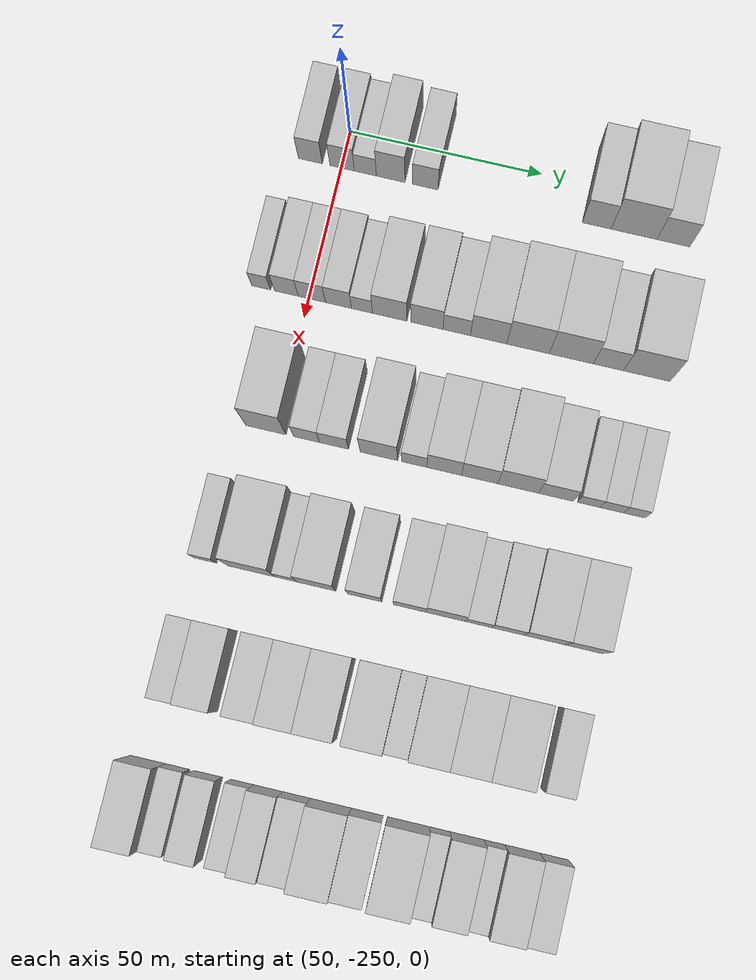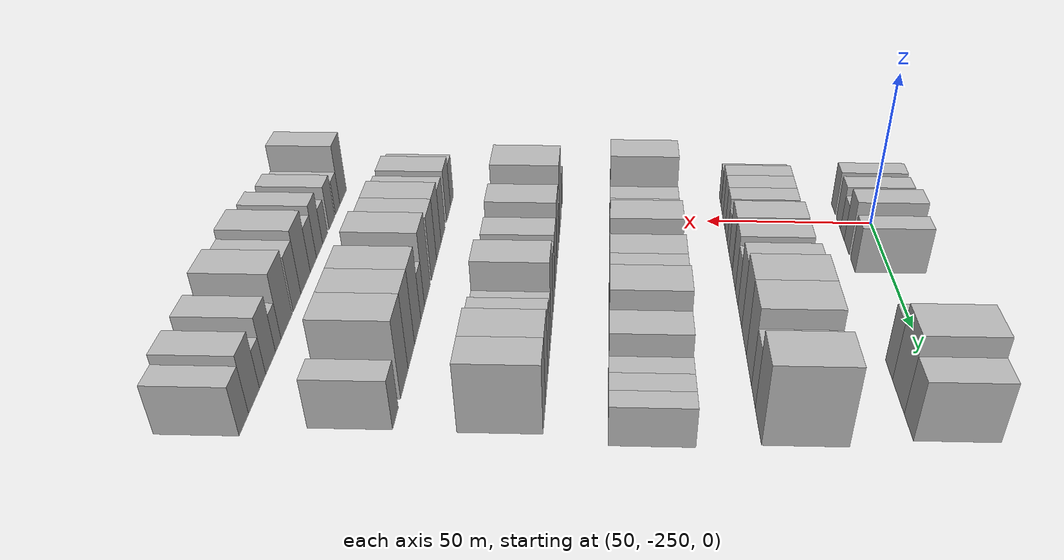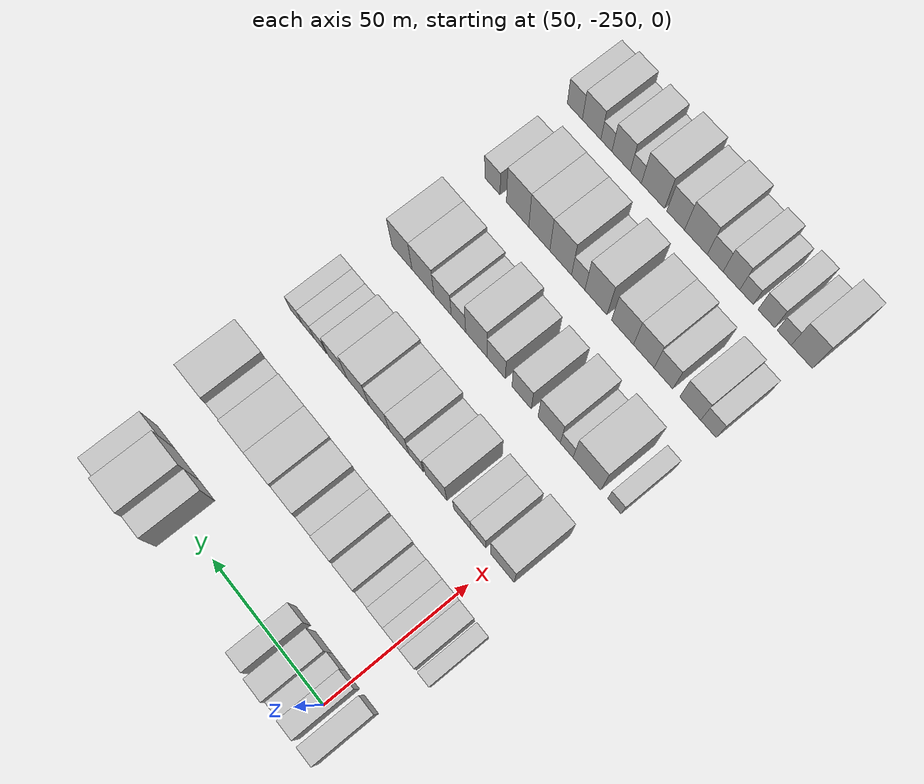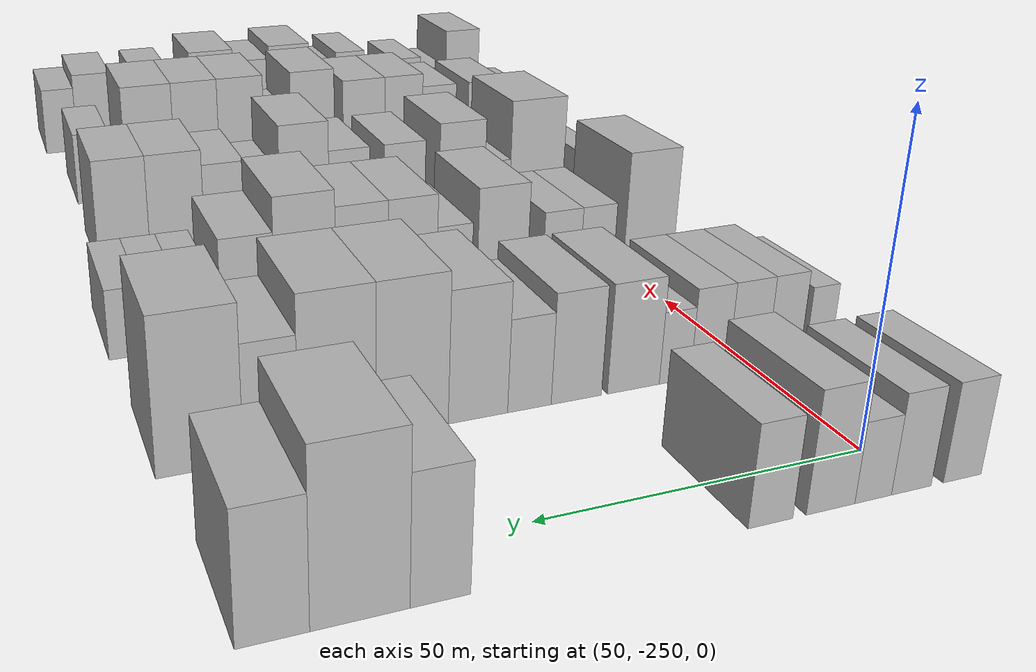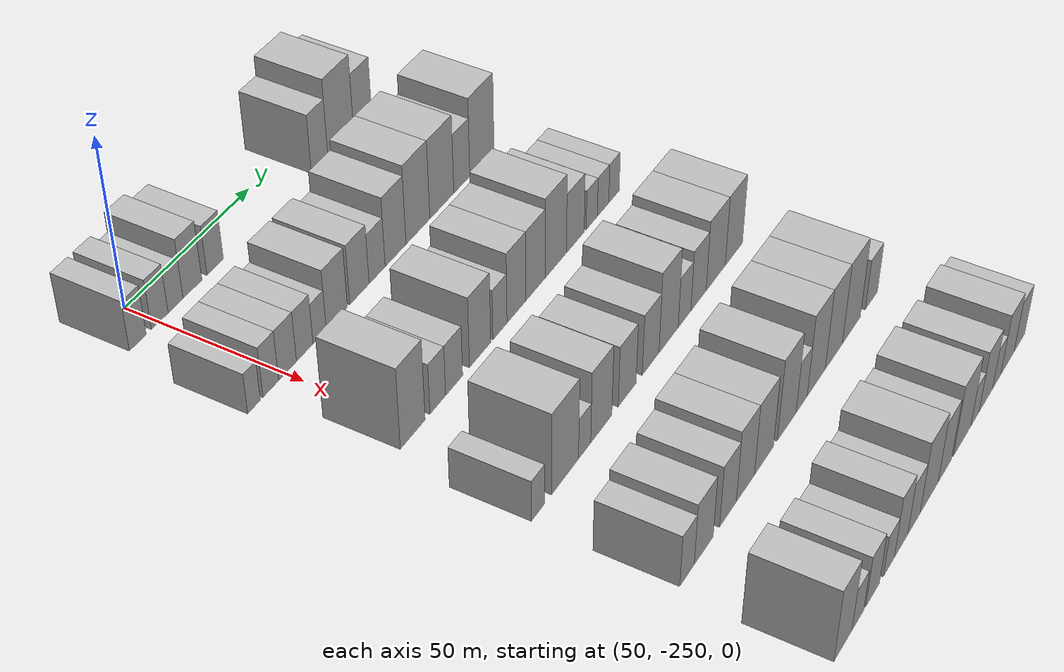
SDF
<sdf version="1.6">
 <world name="default">
  <model name="building_37">
   <static>1</static>
   <pose>50.0000 -258.0937 0 0.000000 0.000000 0.000000</pose>
   <link name="link">
    <pose>0 0 7.50 0 0 0</pose>
    <collision name="collision"><geometry><box><size>20.0000 6.2632 15.0000</size></box></geometry></collision>
    <visual name="visual">
     <cast_shadows>0</cast_shadows>
     <geometry><box><size>20.0000 6.2632 15.0000</size></box></geometry>
     <material>
      <script>
       <uri>model://HANNAS_wall/materials/scripts</uri>
       <uri>model://HANNAS_wall/materials/textures</uri>
       <name>vrc/HANNAS_wall</name>
      </script>
     </material>
    </visual>
   </link>
  </model>
  <model name="building_38">
   <static>1</static>
   <pose>50.0000 -249.7709 0 0.000000 0.000000 0.000000</pose>
   <link name="link">
    <pose>0 0 7.50 0 0 0</pose>
    <collision name="collision"><geometry><box><size>20.0000 6.3823 15.0000</size></box></geometry></collision>
    <visual name="visual">
     <cast_shadows>0</cast_shadows>
     <geometry><box><size>20.0000 6.3823 15.0000</size></box></geometry>
     <material>
      <script>
       <uri>model://HANNAS_wall/materials/scripts</uri>
       <uri>model://HANNAS_wall/materials/textures</uri>
       <name>vrc/HANNAS_wall</name>
      </script>
     </material>
    </visual>
   </link>
  </model>
  <model name="building_39">
   <static>1</static>
   <pose>50.0000 -243.7044 0 0.000000 0.000000 0.000000</pose>
   <link name="link">
    <pose>0 0 6.00 0 0 0</pose>
    <collision name="collision"><geometry><box><size>20.0000 5.7508 12.0000</size></box></geometry></collision>
    <visual name="visual">
     <cast_shadows>0</cast_shadows>
     <geometry><box><size>20.0000 5.7508 12.0000</size></box></geometry>
     <material>
      <script>
       <uri>model://HANNAS_wall/materials/scripts</uri>
       <uri>model://HANNAS_wall/materials/textures</uri>
       <name>vrc/HANNAS_wall</name>
      </script>
     </material>
    </visual>
   </link>
  </model>
  <model name="building_40">
   <static>1</static>
   <pose>50.0000 -237.0932 0 0.000000 0.000000 0.000000</pose>
   <link name="link">
    <pose>0 0 9.00 0 0 0</pose>
    <collision name="collision"><geometry><box><size>20.0000 7.4716 18.0000</size></box></geometry></collision>
    <visual name="visual">
     <cast_shadows>0</cast_shadows>
     <geometry><box><size>20.0000 7.4716 18.0000</size></box></geometry>
     <material>
      <script>
       <uri>model://HANNAS_wall/materials/scripts</uri>
       <uri>model://HANNAS_wall/materials/textures</uri>
       <name>vrc/HANNAS_wall</name>
      </script>
     </material>
    </visual>
   </link>
  </model>
  <model name="building_41">
   <static>1</static>
   <pose>50.0000 -228.0385 0 0.000000 0.000000 0.000000</pose>
   <link name="link">
    <pose>0 0 7.50 0 0 0</pose>
    <collision name="collision"><geometry><box><size>20.0000 6.6378 15.0000</size></box></geometry></collision>
    <visual name="visual">
     <cast_shadows>0</cast_shadows>
     <geometry><box><size>20.0000 6.6378 15.0000</size></box></geometry>
     <material>
      <script>
       <uri>model://HANNAS_wall/materials/scripts</uri>
       <uri>model://HANNAS_wall/materials/textures</uri>
       <name>vrc/HANNAS_wall</name>
      </script>
     </material>
    </visual>
   </link>
  </model>
  <model name="building_42">
   <static>1</static>
   <pose>50.0000 -183.5103 0 0.000000 0.000000 0.000000</pose>
   <link name="link">
    <pose>0 0 9.00 0 0 0</pose>
    <collision name="collision"><geometry><box><size>20.0000 7.4729 18.0000</size></box></geometry></collision>
    <visual name="visual">
     <cast_shadows>0</cast_shadows>
     <geometry><box><size>20.0000 7.4729 18.0000</size></box></geometry>
     <material>
      <script>
       <uri>model://HANNAS_wall/materials/scripts</uri>
       <uri>model://HANNAS_wall/materials/textures</uri>
       <name>vrc/HANNAS_wall</name>
      </script>
     </material>
    </visual>
   </link>
  </model>
  <model name="building_43">
   <static>1</static>
   <pose>50.0000 -173.8588 0 0.000000 0.000000 0.000000</pose>
   <link name="link">
    <pose>0 0 12.00 0 0 0</pose>
    <collision name="collision"><geometry><box><size>20.0000 11.8300 24.0000</size></box></geometry></collision>
    <visual name="visual">
     <cast_shadows>0</cast_shadows>
     <geometry><box><size>20.0000 11.8300 24.0000</size></box></geometry>
     <material>
      <script>
       <uri>model://HANNAS_wall/materials/scripts</uri>
       <uri>model://HANNAS_wall/materials/textures</uri>
       <name>vrc/HANNAS_wall</name>
      </script>
     </material>
    </visual>
   </link>
  </model>
  <model name="building_44">
   <static>1</static>
   <pose>50.0000 -163.6865 0 0.000000 0.000000 0.000000</pose>
   <link name="link">
    <pose>0 0 9.00 0 0 0</pose>
    <collision name="collision"><geometry><box><size>20.0000 8.5146 18.0000</size></box></geometry></collision>
    <visual name="visual">
     <cast_shadows>0</cast_shadows>
     <geometry><box><size>20.0000 8.5146 18.0000</size></box></geometry>
     <material>
      <script>
       <uri>model://HANNAS_wall/materials/scripts</uri>
       <uri>model://HANNAS_wall/materials/textures</uri>
       <name>vrc/HANNAS_wall</name>
      </script>
     </material>
    </visual>
   </link>
  </model>
  <model name="building_155">
   <static>1</static>
   <pose>85.0000 -262.2812 0 0.000000 0.000000 0.000000</pose>
   <link name="link">
    <pose>0 0 6.00 0 0 0</pose>
    <collision name="collision"><geometry><box><size>20.0000 4.8796 12.0000</size></box></geometry></collision>
    <visual name="visual">
     <cast_shadows>0</cast_shadows>
     <geometry><box><size>20.0000 4.8796 12.0000</size></box></geometry>
     <material>
      <script>
       <uri>model://HANNAS_wall/materials/scripts</uri>
       <uri>model://HANNAS_wall/materials/textures</uri>
       <name>vrc/HANNAS_wall</name>
      </script>
     </material>
    </visual>
   </link>
  </model>
  <model name="building_156">
   <static>1</static>
   <pose>85.0000 -255.7673 0 0.000000 0.000000 0.000000</pose>
   <link name="link">
    <pose>0 0 7.50 0 0 0</pose>
    <collision name="collision"><geometry><box><size>20.0000 6.1482 15.0000</size></box></geometry></collision>
    <visual name="visual">
     <cast_shadows>0</cast_shadows>
     <geometry><box><size>20.0000 6.1482 15.0000</size></box></geometry>
     <material>
      <script>
       <uri>model://HANNAS_wall/materials/scripts</uri>
       <uri>model://HANNAS_wall/materials/textures</uri>
       <name>vrc/HANNAS_wall</name>
      </script>
     </material>
    </visual>
   </link>
  </model>
  <model name="building_157">
   <static>1</static>
   <pose>85.0000 -249.1552 0 0.000000 0.000000 0.000000</pose>
   <link name="link">
    <pose>0 0 7.50 0 0 0</pose>
    <collision name="collision"><geometry><box><size>20.0000 7.0761 15.0000</size></box></geometry></collision>
    <visual name="visual">
     <cast_shadows>0</cast_shadows>
     <geometry><box><size>20.0000 7.0761 15.0000</size></box></geometry>
     <material>
      <script>
       <uri>model://HANNAS_wall/materials/scripts</uri>
       <uri>model://HANNAS_wall/materials/textures</uri>
       <name>vrc/HANNAS_wall</name>
      </script>
     </material>
    </visual>
   </link>
  </model>
  <model name="building_158">
   <static>1</static>
   <pose>85.0000 -242.2648 0 0.000000 0.000000 0.000000</pose>
   <link name="link">
    <pose>0 0 7.50 0 0 0</pose>
    <collision name="collision"><geometry><box><size>20.0000 6.7046 15.0000</size></box></geometry></collision>
    <visual name="visual">
     <cast_shadows>0</cast_shadows>
     <geometry><box><size>20.0000 6.7046 15.0000</size></box></geometry>
     <material>
      <script>
       <uri>model://HANNAS_wall/materials/scripts</uri>
       <uri>model://HANNAS_wall/materials/textures</uri>
       <name>vrc/HANNAS_wall</name>
      </script>
     </material>
    </visual>
   </link>
  </model>
  <model name="building_159">
   <static>1</static>
   <pose>85.0000 -236.1976 0 0.000000 0.000000 0.000000</pose>
   <link name="link">
    <pose>0 0 6.00 0 0 0</pose>
    <collision name="collision"><geometry><box><size>20.0000 5.4297 12.0000</size></box></geometry></collision>
    <visual name="visual">
     <cast_shadows>0</cast_shadows>
     <geometry><box><size>20.0000 5.4297 12.0000</size></box></geometry>
     <material>
      <script>
       <uri>model://HANNAS_wall/materials/scripts</uri>
       <uri>model://HANNAS_wall/materials/textures</uri>
       <name>vrc/HANNAS_wall</name>
      </script>
     </material>
    </visual>
   </link>
  </model>
  <model name="building_160">
   <static>1</static>
   <pose>85.0000 -229.0585 0 0.000000 0.000000 0.000000</pose>
   <link name="link">
    <pose>0 0 9.00 0 0 0</pose>
    <collision name="collision"><geometry><box><size>20.0000 8.8485 18.0000</size></box></geometry></collision>
    <visual name="visual">
     <cast_shadows>0</cast_shadows>
     <geometry><box><size>20.0000 8.8485 18.0000</size></box></geometry>
     <material>
      <script>
       <uri>model://HANNAS_wall/materials/scripts</uri>
       <uri>model://HANNAS_wall/materials/textures</uri>
       <name>vrc/HANNAS_wall</name>
      </script>
     </material>
    </visual>
   </link>
  </model>
  <model name="building_161">
   <static>1</static>
   <pose>85.0000 -219.4779 0 0.000000 0.000000 0.000000</pose>
   <link name="link">
    <pose>0 0 9.00 0 0 0</pose>
    <collision name="collision"><geometry><box><size>20.0000 8.3127 18.0000</size></box></geometry></collision>
    <visual name="visual">
     <cast_shadows>0</cast_shadows>
     <geometry><box><size>20.0000 8.3127 18.0000</size></box></geometry>
     <material>
      <script>
       <uri>model://HANNAS_wall/materials/scripts</uri>
       <uri>model://HANNAS_wall/materials/textures</uri>
       <name>vrc/HANNAS_wall</name>
      </script>
     </material>
    </visual>
   </link>
  </model>
  <model name="building_162">
   <static>1</static>
   <pose>85.0000 -211.8060 0 0.000000 0.000000 0.000000</pose>
   <link name="link">
    <pose>0 0 7.50 0 0 0</pose>
    <collision name="collision"><geometry><box><size>20.0000 7.0311 15.0000</size></box></geometry></collision>
    <visual name="visual">
     <cast_shadows>0</cast_shadows>
     <geometry><box><size>20.0000 7.0311 15.0000</size></box></geometry>
     <material>
      <script>
       <uri>model://HANNAS_wall/materials/scripts</uri>
       <uri>model://HANNAS_wall/materials/textures</uri>
       <name>vrc/HANNAS_wall</name>
      </script>
     </material>
    </visual>
   </link>
  </model>
  <model name="building_163">
   <static>1</static>
   <pose>85.0000 -203.6371 0 0.000000 0.000000 0.000000</pose>
   <link name="link">
    <pose>0 0 10.50 0 0 0</pose>
    <collision name="collision"><geometry><box><size>20.0000 9.3066 21.0000</size></box></geometry></collision>
    <visual name="visual">
     <cast_shadows>0</cast_shadows>
     <geometry><box><size>20.0000 9.3066 21.0000</size></box></geometry>
     <material>
      <script>
       <uri>model://HANNAS_wall/materials/scripts</uri>
       <uri>model://HANNAS_wall/materials/textures</uri>
       <name>vrc/HANNAS_wall</name>
      </script>
     </material>
    </visual>
   </link>
  </model>
  <model name="building_164">
   <static>1</static>
   <pose>85.0000 -193.5182 0 0.000000 0.000000 0.000000</pose>
   <link name="link">
    <pose>0 0 12.00 0 0 0</pose>
    <collision name="collision"><geometry><box><size>20.0000 10.9312 24.0000</size></box></geometry></collision>
    <visual name="visual">
     <cast_shadows>0</cast_shadows>
     <geometry><box><size>20.0000 10.9312 24.0000</size></box></geometry>
     <material>
      <script>
       <uri>model://HANNAS_wall/materials/scripts</uri>
       <uri>model://HANNAS_wall/materials/textures</uri>
       <name>vrc/HANNAS_wall</name>
      </script>
     </material>
    </visual>
   </link>
  </model>
  <model name="building_165">
   <static>1</static>
   <pose>85.0000 -182.4015 0 0.000000 0.000000 0.000000</pose>
   <link name="link">
    <pose>0 0 12.00 0 0 0</pose>
    <collision name="collision"><geometry><box><size>20.0000 11.3022 24.0000</size></box></geometry></collision>
    <visual name="visual">
     <cast_shadows>0</cast_shadows>
     <geometry><box><size>20.0000 11.3022 24.0000</size></box></geometry>
     <material>
      <script>
       <uri>model://HANNAS_wall/materials/scripts</uri>
       <uri>model://HANNAS_wall/materials/textures</uri>
       <name>vrc/HANNAS_wall</name>
      </script>
     </material>
    </visual>
   </link>
  </model>
  <model name="building_166">
   <static>1</static>
   <pose>85.0000 -172.8926 0 0.000000 0.000000 0.000000</pose>
   <link name="link">
    <pose>0 0 9.00 0 0 0</pose>
    <collision name="collision"><geometry><box><size>20.0000 7.7158 18.0000</size></box></geometry></collision>
    <visual name="visual">
     <cast_shadows>0</cast_shadows>
     <geometry><box><size>20.0000 7.7158 18.0000</size></box></geometry>
     <material>
      <script>
       <uri>model://HANNAS_wall/materials/scripts</uri>
       <uri>model://HANNAS_wall/materials/textures</uri>
       <name>vrc/HANNAS_wall</name>
      </script>
     </material>
    </visual>
   </link>
  </model>
  <model name="building_167">
   <static>1</static>
   <pose>85.0000 -163.0567 0 0.000000 0.000000 0.000000</pose>
   <link name="link">
    <pose>0 0 12.00 0 0 0</pose>
    <collision name="collision"><geometry><box><size>20.0000 11.9559 24.0000</size></box></geometry></collision>
    <visual name="visual">
     <cast_shadows>0</cast_shadows>
     <geometry><box><size>20.0000 11.9559 24.0000</size></box></geometry>
     <material>
      <script>
       <uri>model://HANNAS_wall/materials/scripts</uri>
       <uri>model://HANNAS_wall/materials/textures</uri>
       <name>vrc/HANNAS_wall</name>
      </script>
     </material>
    </visual>
   </link>
  </model>
  <model name="building_290">
   <static>1</static>
   <pose>120.0000 -252.3766 0 0.000000 0.000000 0.000000</pose>
   <link name="link">
    <pose>0 0 12.00 0 0 0</pose>
    <collision name="collision"><geometry><box><size>20.0000 10.2558 24.0000</size></box></geometry></collision>
    <visual name="visual">
     <cast_shadows>0</cast_shadows>
     <geometry><box><size>20.0000 10.2558 24.0000</size></box></geometry>
     <material>
      <script>
       <uri>model://HANNAS_wall/materials/scripts</uri>
       <uri>model://HANNAS_wall/materials/textures</uri>
       <name>vrc/HANNAS_wall</name>
      </script>
     </material>
    </visual>
   </link>
  </model>
  <model name="building_291">
   <static>1</static>
   <pose>120.0000 -241.9222 0 0.000000 0.000000 0.000000</pose>
   <link name="link">
    <pose>0 0 7.50 0 0 0</pose>
    <collision name="collision"><geometry><box><size>20.0000 6.6531 15.0000</size></box></geometry></collision>
    <visual name="visual">
     <cast_shadows>0</cast_shadows>
     <geometry><box><size>20.0000 6.6531 15.0000</size></box></geometry>
     <material>
      <script>
       <uri>model://HANNAS_wall/materials/scripts</uri>
       <uri>model://HANNAS_wall/materials/textures</uri>
       <name>vrc/HANNAS_wall</name>
      </script>
     </material>
    </visual>
   </link>
  </model>
  <model name="building_292">
   <static>1</static>
   <pose>120.0000 -234.9176 0 0.000000 0.000000 0.000000</pose>
   <link name="link">
    <pose>0 0 7.50 0 0 0</pose>
    <collision name="collision"><geometry><box><size>20.0000 7.3561 15.0000</size></box></geometry></collision>
    <visual name="visual">
     <cast_shadows>0</cast_shadows>
     <geometry><box><size>20.0000 7.3561 15.0000</size></box></geometry>
     <material>
      <script>
       <uri>model://HANNAS_wall/materials/scripts</uri>
       <uri>model://HANNAS_wall/materials/textures</uri>
       <name>vrc/HANNAS_wall</name>
      </script>
     </material>
    </visual>
   </link>
  </model>
  <model name="building_293">
   <static>1</static>
   <pose>120.0000 -223.4938 0 0.000000 0.000000 0.000000</pose>
   <link name="link">
    <pose>0 0 10.50 0 0 0</pose>
    <collision name="collision"><geometry><box><size>20.0000 9.4916 21.0000</size></box></geometry></collision>
    <visual name="visual">
     <cast_shadows>0</cast_shadows>
     <geometry><box><size>20.0000 9.4916 21.0000</size></box></geometry>
     <material>
      <script>
       <uri>model://HANNAS_wall/materials/scripts</uri>
       <uri>model://HANNAS_wall/materials/textures</uri>
       <name>vrc/HANNAS_wall</name>
      </script>
     </material>
    </visual>
   </link>
  </model>
  <model name="building_294">
   <static>1</static>
   <pose>120.0000 -214.5290 0 0.000000 0.000000 0.000000</pose>
   <link name="link">
    <pose>0 0 7.50 0 0 0</pose>
    <collision name="collision"><geometry><box><size>20.0000 6.4379 15.0000</size></box></geometry></collision>
    <visual name="visual">
     <cast_shadows>0</cast_shadows>
     <geometry><box><size>20.0000 6.4379 15.0000</size></box></geometry>
     <material>
      <script>
       <uri>model://HANNAS_wall/materials/scripts</uri>
       <uri>model://HANNAS_wall/materials/textures</uri>
       <name>vrc/HANNAS_wall</name>
      </script>
     </material>
    </visual>
   </link>
  </model>
  <model name="building_295">
   <static>1</static>
   <pose>120.0000 -206.9218 0 0.000000 0.000000 0.000000</pose>
   <link name="link">
    <pose>0 0 10.50 0 0 0</pose>
    <collision name="collision"><geometry><box><size>20.0000 8.7766 21.0000</size></box></geometry></collision>
    <visual name="visual">
     <cast_shadows>0</cast_shadows>
     <geometry><box><size>20.0000 8.7766 21.0000</size></box></geometry>
     <material>
      <script>
       <uri>model://HANNAS_wall/materials/scripts</uri>
       <uri>model://HANNAS_wall/materials/textures</uri>
       <name>vrc/HANNAS_wall</name>
      </script>
     </material>
    </visual>
   </link>
  </model>
  <model name="building_296">
   <static>1</static>
   <pose>120.0000 -197.9404 0 0.000000 0.000000 0.000000</pose>
   <link name="link">
    <pose>0 0 10.50 0 0 0</pose>
    <collision name="collision"><geometry><box><size>20.0000 9.1861 21.0000</size></box></geometry></collision>
    <visual name="visual">
     <cast_shadows>0</cast_shadows>
     <geometry><box><size>20.0000 9.1861 21.0000</size></box></geometry>
     <material>
      <script>
       <uri>model://HANNAS_wall/materials/scripts</uri>
       <uri>model://HANNAS_wall/materials/textures</uri>
       <name>vrc/HANNAS_wall</name>
      </script>
     </material>
    </visual>
   </link>
  </model>
  <model name="building_297">
   <static>1</static>
   <pose>120.0000 -188.1647 0 0.000000 0.000000 0.000000</pose>
   <link name="link">
    <pose>0 0 12.00 0 0 0</pose>
    <collision name="collision"><geometry><box><size>20.0000 10.3653 24.0000</size></box></geometry></collision>
    <visual name="visual">
     <cast_shadows>0</cast_shadows>
     <geometry><box><size>20.0000 10.3653 24.0000</size></box></geometry>
     <material>
      <script>
       <uri>model://HANNAS_wall/materials/scripts</uri>
       <uri>model://HANNAS_wall/materials/textures</uri>
       <name>vrc/HANNAS_wall</name>
      </script>
     </material>
    </visual>
   </link>
  </model>
  <model name="building_298">
   <static>1</static>
   <pose>120.0000 -178.5149 0 0.000000 0.000000 0.000000</pose>
   <link name="link">
    <pose>0 0 9.00 0 0 0</pose>
    <collision name="collision"><geometry><box><size>20.0000 8.9342 18.0000</size></box></geometry></collision>
    <visual name="visual">
     <cast_shadows>0</cast_shadows>
     <geometry><box><size>20.0000 8.9342 18.0000</size></box></geometry>
     <material>
      <script>
       <uri>model://HANNAS_wall/materials/scripts</uri>
       <uri>model://HANNAS_wall/materials/textures</uri>
       <name>vrc/HANNAS_wall</name>
      </script>
     </material>
    </visual>
   </link>
  </model>
  <model name="building_299">
   <static>1</static>
   <pose>120.0000 -170.1992 0 0.000000 0.000000 0.000000</pose>
   <link name="link">
    <pose>0 0 6.00 0 0 0</pose>
    <collision name="collision"><geometry><box><size>20.0000 5.6974 12.0000</size></box></geometry></collision>
    <visual name="visual">
     <cast_shadows>0</cast_shadows>
     <geometry><box><size>20.0000 5.6974 12.0000</size></box></geometry>
     <material>
      <script>
       <uri>model://HANNAS_wall/materials/scripts</uri>
       <uri>model://HANNAS_wall/materials/textures</uri>
       <name>vrc/HANNAS_wall</name>
      </script>
     </material>
    </visual>
   </link>
  </model>
  <model name="building_300">
   <static>1</static>
   <pose>120.0000 -164.3979 0 0.000000 0.000000 0.000000</pose>
   <link name="link">
    <pose>0 0 6.00 0 0 0</pose>
    <collision name="collision"><geometry><box><size>20.0000 5.9051 12.0000</size></box></geometry></collision>
    <visual name="visual">
     <cast_shadows>0</cast_shadows>
     <geometry><box><size>20.0000 5.9051 12.0000</size></box></geometry>
     <material>
      <script>
       <uri>model://HANNAS_wall/materials/scripts</uri>
       <uri>model://HANNAS_wall/materials/textures</uri>
       <name>vrc/HANNAS_wall</name>
      </script>
     </material>
    </visual>
   </link>
  </model>
  <model name="building_301">
   <static>1</static>
   <pose>120.0000 -158.7068 0 0.000000 0.000000 0.000000</pose>
   <link name="link">
    <pose>0 0 6.00 0 0 0</pose>
    <collision name="collision"><geometry><box><size>20.0000 5.4771 12.0000</size></box></geometry></collision>
    <visual name="visual">
     <cast_shadows>0</cast_shadows>
     <geometry><box><size>20.0000 5.4771 12.0000</size></box></geometry>
     <material>
      <script>
       <uri>model://HANNAS_wall/materials/scripts</uri>
       <uri>model://HANNAS_wall/materials/textures</uri>
       <name>vrc/HANNAS_wall</name>
      </script>
     </material>
    </visual>
   </link>
  </model>
  <model name="building_420">
   <static>1</static>
   <pose>155.0000 -259.0500 0 0.000000 0.000000 0.000000</pose>
   <link name="link">
    <pose>0 0 6.00 0 0 0</pose>
    <collision name="collision"><geometry><box><size>20.0000 5.6367 12.0000</size></box></geometry></collision>
    <visual name="visual">
     <cast_shadows>0</cast_shadows>
     <geometry><box><size>20.0000 5.6367 12.0000</size></box></geometry>
     <material>
      <script>
       <uri>model://HANNAS_wall/materials/scripts</uri>
       <uri>model://HANNAS_wall/materials/textures</uri>
       <name>vrc/HANNAS_wall</name>
      </script>
     </material>
    </visual>
   </link>
  </model>
  <model name="building_421">
   <static>1</static>
   <pose>155.0000 -247.2632 0 0.000000 0.000000 0.000000</pose>
   <link name="link">
    <pose>0 0 12.00 0 0 0</pose>
    <collision name="collision"><geometry><box><size>20.0000 11.9369 24.0000</size></box></geometry></collision>
    <visual name="visual">
     <cast_shadows>0</cast_shadows>
     <geometry><box><size>20.0000 11.9369 24.0000</size></box></geometry>
     <material>
      <script>
       <uri>model://HANNAS_wall/materials/scripts</uri>
       <uri>model://HANNAS_wall/materials/textures</uri>
       <name>vrc/HANNAS_wall</name>
      </script>
     </material>
    </visual>
   </link>
  </model>
  <model name="building_422">
   <static>1</static>
   <pose>155.0000 -238.5297 0 0.000000 0.000000 0.000000</pose>
   <link name="link">
    <pose>0 0 6.00 0 0 0</pose>
    <collision name="collision"><geometry><box><size>20.0000 5.5303 12.0000</size></box></geometry></collision>
    <visual name="visual">
     <cast_shadows>0</cast_shadows>
     <geometry><box><size>20.0000 5.5303 12.0000</size></box></geometry>
     <material>
      <script>
       <uri>model://HANNAS_wall/materials/scripts</uri>
       <uri>model://HANNAS_wall/materials/textures</uri>
       <name>vrc/HANNAS_wall</name>
      </script>
     </material>
    </visual>
   </link>
  </model>
  <model name="building_423">
   <static>1</static>
   <pose>155.0000 -230.8770 0 0.000000 0.000000 0.000000</pose>
   <link name="link">
    <pose>0 0 10.50 0 0 0</pose>
    <collision name="collision"><geometry><box><size>20.0000 9.7752 21.0000</size></box></geometry></collision>
    <visual name="visual">
     <cast_shadows>0</cast_shadows>
     <geometry><box><size>20.0000 9.7752 21.0000</size></box></geometry>
     <material>
      <script>
       <uri>model://HANNAS_wall/materials/scripts</uri>
       <uri>model://HANNAS_wall/materials/textures</uri>
       <name>vrc/HANNAS_wall</name>
      </script>
     </material>
    </visual>
   </link>
  </model>
  <model name="building_424">
   <static>1</static>
   <pose>155.0000 -218.7185 0 0.000000 0.000000 0.000000</pose>
   <link name="link">
    <pose>0 0 9.00 0 0 0</pose>
    <collision name="collision"><geometry><box><size>20.0000 8.5418 18.0000</size></box></geometry></collision>
    <visual name="visual">
     <cast_shadows>0</cast_shadows>
     <geometry><box><size>20.0000 8.5418 18.0000</size></box></geometry>
     <material>
      <script>
       <uri>model://HANNAS_wall/materials/scripts</uri>
       <uri>model://HANNAS_wall/materials/textures</uri>
       <name>vrc/HANNAS_wall</name>
      </script>
     </material>
    </visual>
   </link>
  </model>
  <model name="building_425">
   <static>1</static>
   <pose>155.0000 -207.3311 0 0.000000 0.000000 0.000000</pose>
   <link name="link">
    <pose>0 0 9.00 0 0 0</pose>
    <collision name="collision"><geometry><box><size>20.0000 8.2330 18.0000</size></box></geometry></collision>
    <visual name="visual">
     <cast_shadows>0</cast_shadows>
     <geometry><box><size>20.0000 8.2330 18.0000</size></box></geometry>
     <material>
      <script>
       <uri>model://HANNAS_wall/materials/scripts</uri>
       <uri>model://HANNAS_wall/materials/textures</uri>
       <name>vrc/HANNAS_wall</name>
      </script>
     </material>
    </visual>
   </link>
  </model>
  <model name="building_426">
   <static>1</static>
   <pose>155.0000 -198.3569 0 0.000000 0.000000 0.000000</pose>
   <link name="link">
    <pose>0 0 12.00 0 0 0</pose>
    <collision name="collision"><geometry><box><size>20.0000 9.7154 24.0000</size></box></geometry></collision>
    <visual name="visual">
     <cast_shadows>0</cast_shadows>
     <geometry><box><size>20.0000 9.7154 24.0000</size></box></geometry>
     <material>
      <script>
       <uri>model://HANNAS_wall/materials/scripts</uri>
       <uri>model://HANNAS_wall/materials/textures</uri>
       <name>vrc/HANNAS_wall</name>
      </script>
     </material>
    </visual>
   </link>
  </model>
  <model name="building_427">
   <static>1</static>
   <pose>155.0000 -190.2030 0 0.000000 0.000000 0.000000</pose>
   <link name="link">
    <pose>0 0 7.50 0 0 0</pose>
    <collision name="collision"><geometry><box><size>20.0000 6.5924 15.0000</size></box></geometry></collision>
    <visual name="visual">
     <cast_shadows>0</cast_shadows>
     <geometry><box><size>20.0000 6.5924 15.0000</size></box></geometry>
     <material>
      <script>
       <uri>model://HANNAS_wall/materials/scripts</uri>
       <uri>model://HANNAS_wall/materials/textures</uri>
       <name>vrc/HANNAS_wall</name>
      </script>
     </material>
    </visual>
   </link>
  </model>
  <model name="building_428">
   <static>1</static>
   <pose>155.0000 -182.9062 0 0.000000 0.000000 0.000000</pose>
   <link name="link">
    <pose>0 0 9.00 0 0 0</pose>
    <collision name="collision"><geometry><box><size>20.0000 8.0010 18.0000</size></box></geometry></collision>
    <visual name="visual">
     <cast_shadows>0</cast_shadows>
     <geometry><box><size>20.0000 8.0010 18.0000</size></box></geometry>
     <material>
      <script>
       <uri>model://HANNAS_wall/materials/scripts</uri>
       <uri>model://HANNAS_wall/materials/textures</uri>
       <name>vrc/HANNAS_wall</name>
      </script>
     </material>
    </visual>
   </link>
  </model>
  <model name="building_429">
   <static>1</static>
   <pose>155.0000 -173.7708 0 0.000000 0.000000 0.000000</pose>
   <link name="link">
    <pose>0 0 10.50 0 0 0</pose>
    <collision name="collision"><geometry><box><size>20.0000 10.2698 21.0000</size></box></geometry></collision>
    <visual name="visual">
     <cast_shadows>0</cast_shadows>
     <geometry><box><size>20.0000 10.2698 21.0000</size></box></geometry>
     <material>
      <script>
       <uri>model://HANNAS_wall/materials/scripts</uri>
       <uri>model://HANNAS_wall/materials/textures</uri>
       <name>vrc/HANNAS_wall</name>
      </script>
     </material>
    </visual>
   </link>
  </model>
  <model name="building_430">
   <static>1</static>
   <pose>155.0000 -163.8896 0 0.000000 0.000000 0.000000</pose>
   <link name="link">
    <pose>0 0 10.50 0 0 0</pose>
    <collision name="collision"><geometry><box><size>20.0000 9.4926 21.0000</size></box></geometry></collision>
    <visual name="visual">
     <cast_shadows>0</cast_shadows>
     <geometry><box><size>20.0000 9.4926 21.0000</size></box></geometry>
     <material>
      <script>
       <uri>model://HANNAS_wall/materials/scripts</uri>
       <uri>model://HANNAS_wall/materials/textures</uri>
       <name>vrc/HANNAS_wall</name>
      </script>
     </material>
    </visual>
   </link>
  </model>
  <model name="building_545">
   <static>1</static>
   <pose>190.0000 -259.3703 0 0.000000 0.000000 0.000000</pose>
   <link name="link">
    <pose>0 0 7.50 0 0 0</pose>
    <collision name="collision"><geometry><box><size>20.0000 6.5895 15.0000</size></box></geometry></collision>
    <visual name="visual">
     <cast_shadows>0</cast_shadows>
     <geometry><box><size>20.0000 6.5895 15.0000</size></box></geometry>
     <material>
      <script>
       <uri>model://HANNAS_wall/materials/scripts</uri>
       <uri>model://HANNAS_wall/materials/textures</uri>
       <name>vrc/HANNAS_wall</name>
      </script>
     </material>
    </visual>
   </link>
  </model>
  <model name="building_546">
   <static>1</static>
   <pose>190.0000 -251.6336 0 0.000000 0.000000 0.000000</pose>
   <link name="link">
    <pose>0 0 9.00 0 0 0</pose>
    <collision name="collision"><geometry><box><size>20.0000 8.8839 18.0000</size></box></geometry></collision>
    <visual name="visual">
     <cast_shadows>0</cast_shadows>
     <geometry><box><size>20.0000 8.8839 18.0000</size></box></geometry>
     <material>
      <script>
       <uri>model://HANNAS_wall/materials/scripts</uri>
       <uri>model://HANNAS_wall/materials/textures</uri>
       <name>vrc/HANNAS_wall</name>
      </script>
     </material>
    </visual>
   </link>
  </model>
  <model name="building_547">
   <static>1</static>
   <pose>190.0000 -240.1503 0 0.000000 0.000000 0.000000</pose>
   <link name="link">
    <pose>0 0 9.00 0 0 0</pose>
    <collision name="collision"><geometry><box><size>20.0000 8.0826 18.0000</size></box></geometry></collision>
    <visual name="visual">
     <cast_shadows>0</cast_shadows>
     <geometry><box><size>20.0000 8.0826 18.0000</size></box></geometry>
     <material>
      <script>
       <uri>model://HANNAS_wall/materials/scripts</uri>
       <uri>model://HANNAS_wall/materials/textures</uri>
       <name>vrc/HANNAS_wall</name>
      </script>
     </material>
    </visual>
   </link>
  </model>
  <model name="building_548">
   <static>1</static>
   <pose>190.0000 -231.6288 0 0.000000 0.000000 0.000000</pose>
   <link name="link">
    <pose>0 0 10.50 0 0 0</pose>
    <collision name="collision"><geometry><box><size>20.0000 8.9604 21.0000</size></box></geometry></collision>
    <visual name="visual">
     <cast_shadows>0</cast_shadows>
     <geometry><box><size>20.0000 8.9604 21.0000</size></box></geometry>
     <material>
      <script>
       <uri>model://HANNAS_wall/materials/scripts</uri>
       <uri>model://HANNAS_wall/materials/textures</uri>
       <name>vrc/HANNAS_wall</name>
      </script>
     </material>
    </visual>
   </link>
  </model>
  <model name="building_549">
   <static>1</static>
   <pose>190.0000 -222.3073 0 0.000000 0.000000 0.000000</pose>
   <link name="link">
    <pose>0 0 10.50 0 0 0</pose>
    <collision name="collision"><geometry><box><size>20.0000 9.6826 21.0000</size></box></geometry></collision>
    <visual name="visual">
     <cast_shadows>0</cast_shadows>
     <geometry><box><size>20.0000 9.6826 21.0000</size></box></geometry>
     <material>
      <script>
       <uri>model://HANNAS_wall/materials/scripts</uri>
       <uri>model://HANNAS_wall/materials/textures</uri>
       <name>vrc/HANNAS_wall</name>
      </script>
     </material>
    </visual>
   </link>
  </model>
  <model name="building_550">
   <static>1</static>
   <pose>190.0000 -210.5410 0 0.000000 0.000000 0.000000</pose>
   <link name="link">
    <pose>0 0 12.00 0 0 0</pose>
    <collision name="collision"><geometry><box><size>20.0000 9.8501 24.0000</size></box></geometry></collision>
    <visual name="visual">
     <cast_shadows>0</cast_shadows>
     <geometry><box><size>20.0000 9.8501 24.0000</size></box></geometry>
     <material>
      <script>
       <uri>model://HANNAS_wall/materials/scripts</uri>
       <uri>model://HANNAS_wall/materials/textures</uri>
       <name>vrc/HANNAS_wall</name>
      </script>
     </material>
    </visual>
   </link>
  </model>
  <model name="building_551">
   <static>1</static>
   <pose>190.0000 -202.6109 0 0.000000 0.000000 0.000000</pose>
   <link name="link">
    <pose>0 0 7.50 0 0 0</pose>
    <collision name="collision"><geometry><box><size>20.0000 6.0100 15.0000</size></box></geometry></collision>
    <visual name="visual">
     <cast_shadows>0</cast_shadows>
     <geometry><box><size>20.0000 6.0100 15.0000</size></box></geometry>
     <material>
      <script>
       <uri>model://HANNAS_wall/materials/scripts</uri>
       <uri>model://HANNAS_wall/materials/textures</uri>
       <name>vrc/HANNAS_wall</name>
      </script>
     </material>
    </visual>
   </link>
  </model>
  <model name="building_552">
   <static>1</static>
   <pose>190.0000 -194.6721 0 0.000000 0.000000 0.000000</pose>
   <link name="link">
    <pose>0 0 12.00 0 0 0</pose>
    <collision name="collision"><geometry><box><size>20.0000 9.8677 24.0000</size></box></geometry></collision>
    <visual name="visual">
     <cast_shadows>0</cast_shadows>
     <geometry><box><size>20.0000 9.8677 24.0000</size></box></geometry>
     <material>
      <script>
       <uri>model://HANNAS_wall/materials/scripts</uri>
       <uri>model://HANNAS_wall/materials/textures</uri>
       <name>vrc/HANNAS_wall</name>
      </script>
     </material>
    </visual>
   </link>
  </model>
  <model name="building_553">
   <static>1</static>
   <pose>190.0000 -184.9275 0 0.000000 0.000000 0.000000</pose>
   <link name="link">
    <pose>0 0 12.00 0 0 0</pose>
    <collision name="collision"><geometry><box><size>20.0000 9.6215 24.0000</size></box></geometry></collision>
    <visual name="visual">
     <cast_shadows>0</cast_shadows>
     <geometry><box><size>20.0000 9.6215 24.0000</size></box></geometry>
     <material>
      <script>
       <uri>model://HANNAS_wall/materials/scripts</uri>
       <uri>model://HANNAS_wall/materials/textures</uri>
       <name>vrc/HANNAS_wall</name>
      </script>
     </material>
    </visual>
   </link>
  </model>
  <model name="building_554">
   <static>1</static>
   <pose>190.0000 -174.9400 0 0.000000 0.000000 0.000000</pose>
   <link name="link">
    <pose>0 0 12.00 0 0 0</pose>
    <collision name="collision"><geometry><box><size>20.0000 10.3534 24.0000</size></box></geometry></collision>
    <visual name="visual">
     <cast_shadows>0</cast_shadows>
     <geometry><box><size>20.0000 10.3534 24.0000</size></box></geometry>
     <material>
      <script>
       <uri>model://HANNAS_wall/materials/scripts</uri>
       <uri>model://HANNAS_wall/materials/textures</uri>
       <name>vrc/HANNAS_wall</name>
      </script>
     </material>
    </visual>
   </link>
  </model>
  <model name="building_555">
   <static>1</static>
   <pose>190.0000 -163.1649 0 0.000000 0.000000 0.000000</pose>
   <link name="link">
    <pose>0 0 7.50 0 0 0</pose>
    <collision name="collision"><geometry><box><size>20.0000 7.1968 15.0000</size></box></geometry></collision>
    <visual name="visual">
     <cast_shadows>0</cast_shadows>
     <geometry><box><size>20.0000 7.1968 15.0000</size></box></geometry>
     <material>
      <script>
       <uri>model://HANNAS_wall/materials/scripts</uri>
       <uri>model://HANNAS_wall/materials/textures</uri>
       <name>vrc/HANNAS_wall</name>
      </script>
     </material>
    </visual>
   </link>
  </model>
  <model name="building_670">
   <static>1</static>
   <pose>225.0000 -260.6648 0 0.000000 0.000000 0.000000</pose>
   <link name="link">
    <pose>0 0 10.50 0 0 0</pose>
    <collision name="collision"><geometry><box><size>20.0000 8.9590 21.0000</size></box></geometry></collision>
    <visual name="visual">
     <cast_shadows>0</cast_shadows>
     <geometry><box><size>20.0000 8.9590 21.0000</size></box></geometry>
     <material>
      <script>
       <uri>model://HANNAS_wall/materials/scripts</uri>
       <uri>model://HANNAS_wall/materials/textures</uri>
       <name>vrc/HANNAS_wall</name>
      </script>
     </material>
    </visual>
   </link>
  </model>
  <model name="building_671">
   <static>1</static>
   <pose>225.0000 -253.2340 0 0.000000 0.000000 0.000000</pose>
   <link name="link">
    <pose>0 0 6.00 0 0 0</pose>
    <collision name="collision"><geometry><box><size>20.0000 5.9026 12.0000</size></box></geometry></collision>
    <visual name="visual">
     <cast_shadows>0</cast_shadows>
     <geometry><box><size>20.0000 5.9026 12.0000</size></box></geometry>
     <material>
      <script>
       <uri>model://HANNAS_wall/materials/scripts</uri>
       <uri>model://HANNAS_wall/materials/textures</uri>
       <name>vrc/HANNAS_wall</name>
      </script>
     </material>
    </visual>
   </link>
  </model>
  <model name="building_672">
   <static>1</static>
   <pose>225.0000 -245.7084 0 0.000000 0.000000 0.000000</pose>
   <link name="link">
    <pose>0 0 7.50 0 0 0</pose>
    <collision name="collision"><geometry><box><size>20.0000 7.1485 15.0000</size></box></geometry></collision>
    <visual name="visual">
     <cast_shadows>0</cast_shadows>
     <geometry><box><size>20.0000 7.1485 15.0000</size></box></geometry>
     <material>
      <script>
       <uri>model://HANNAS_wall/materials/scripts</uri>
       <uri>model://HANNAS_wall/materials/textures</uri>
       <name>vrc/HANNAS_wall</name>
      </script>
     </material>
    </visual>
   </link>
  </model>
  <model name="building_673">
   <static>1</static>
   <pose>225.0000 -237.2140 0 0.000000 0.000000 0.000000</pose>
   <link name="link">
    <pose>0 0 6.00 0 0 0</pose>
    <collision name="collision"><geometry><box><size>20.0000 5.8402 12.0000</size></box></geometry></collision>
    <visual name="visual">
     <cast_shadows>0</cast_shadows>
     <geometry><box><size>20.0000 5.8402 12.0000</size></box></geometry>
     <material>
      <script>
       <uri>model://HANNAS_wall/materials/scripts</uri>
       <uri>model://HANNAS_wall/materials/textures</uri>
       <name>vrc/HANNAS_wall</name>
      </script>
     </material>
    </visual>
   </link>
  </model>
  <model name="building_674">
   <static>1</static>
   <pose>225.0000 -230.6812 0 0.000000 0.000000 0.000000</pose>
   <link name="link">
    <pose>0 0 9.00 0 0 0</pose>
    <collision name="collision"><geometry><box><size>20.0000 7.2255 18.0000</size></box></geometry></collision>
    <visual name="visual">
     <cast_shadows>0</cast_shadows>
     <geometry><box><size>20.0000 7.2255 18.0000</size></box></geometry>
     <material>
      <script>
       <uri>model://HANNAS_wall/materials/scripts</uri>
       <uri>model://HANNAS_wall/materials/textures</uri>
       <name>vrc/HANNAS_wall</name>
      </script>
     </material>
    </visual>
   </link>
  </model>
  <model name="building_675">
   <static>1</static>
   <pose>225.0000 -223.6299 0 0.000000 0.000000 0.000000</pose>
   <link name="link">
    <pose>0 0 7.50 0 0 0</pose>
    <collision name="collision"><geometry><box><size>20.0000 6.8771 15.0000</size></box></geometry></collision>
    <visual name="visual">
     <cast_shadows>0</cast_shadows>
     <geometry><box><size>20.0000 6.8771 15.0000</size></box></geometry>
     <material>
      <script>
       <uri>model://HANNAS_wall/materials/scripts</uri>
       <uri>model://HANNAS_wall/materials/textures</uri>
       <name>vrc/HANNAS_wall</name>
      </script>
     </material>
    </visual>
   </link>
  </model>
  <model name="building_676">
   <static>1</static>
   <pose>225.0000 -215.1403 0 0.000000 0.000000 0.000000</pose>
   <link name="link">
    <pose>0 0 10.50 0 0 0</pose>
    <collision name="collision"><geometry><box><size>20.0000 10.1022 21.0000</size></box></geometry></collision>
    <visual name="visual">
     <cast_shadows>0</cast_shadows>
     <geometry><box><size>20.0000 10.1022 21.0000</size></box></geometry>
     <material>
      <script>
       <uri>model://HANNAS_wall/materials/scripts</uri>
       <uri>model://HANNAS_wall/materials/textures</uri>
       <name>vrc/HANNAS_wall</name>
      </script>
     </material>
    </visual>
   </link>
  </model>
  <model name="building_677">
   <static>1</static>
   <pose>225.0000 -206.1646 0 0.000000 0.000000 0.000000</pose>
   <link name="link">
    <pose>0 0 9.00 0 0 0</pose>
    <collision name="collision"><geometry><box><size>20.0000 7.8492 18.0000</size></box></geometry></collision>
    <visual name="visual">
     <cast_shadows>0</cast_shadows>
     <geometry><box><size>20.0000 7.8492 18.0000</size></box></geometry>
     <material>
      <script>
       <uri>model://HANNAS_wall/materials/scripts</uri>
       <uri>model://HANNAS_wall/materials/textures</uri>
       <name>vrc/HANNAS_wall</name>
      </script>
     </material>
    </visual>
   </link>
  </model>
  <model name="building_678">
   <static>1</static>
   <pose>225.0000 -196.0189 0 0.000000 0.000000 0.000000</pose>
   <link name="link">
    <pose>0 0 10.50 0 0 0</pose>
    <collision name="collision"><geometry><box><size>20.0000 10.4421 21.0000</size></box></geometry></collision>
    <visual name="visual">
     <cast_shadows>0</cast_shadows>
     <geometry><box><size>20.0000 10.4421 21.0000</size></box></geometry>
     <material>
      <script>
       <uri>model://HANNAS_wall/materials/scripts</uri>
       <uri>model://HANNAS_wall/materials/textures</uri>
       <name>vrc/HANNAS_wall</name>
      </script>
     </material>
    </visual>
   </link>
  </model>
  <model name="building_679">
   <static>1</static>
   <pose>225.0000 -188.2692 0 0.000000 0.000000 0.000000</pose>
   <link name="link">
    <pose>0 0 6.00 0 0 0</pose>
    <collision name="collision"><geometry><box><size>20.0000 5.0574 12.0000</size></box></geometry></collision>
    <visual name="visual">
     <cast_shadows>0</cast_shadows>
     <geometry><box><size>20.0000 5.0574 12.0000</size></box></geometry>
     <material>
      <script>
       <uri>model://HANNAS_wall/materials/scripts</uri>
       <uri>model://HANNAS_wall/materials/textures</uri>
       <name>vrc/HANNAS_wall</name>
      </script>
     </material>
    </visual>
   </link>
  </model>
  <model name="building_680">
   <static>1</static>
   <pose>225.0000 -181.5519 0 0.000000 0.000000 0.000000</pose>
   <link name="link">
    <pose>0 0 9.00 0 0 0</pose>
    <collision name="collision"><geometry><box><size>20.0000 8.3770 18.0000</size></box></geometry></collision>
    <visual name="visual">
     <cast_shadows>0</cast_shadows>
     <geometry><box><size>20.0000 8.3770 18.0000</size></box></geometry>
     <material>
      <script>
       <uri>model://HANNAS_wall/materials/scripts</uri>
       <uri>model://HANNAS_wall/materials/textures</uri>
       <name>vrc/HANNAS_wall</name>
      </script>
     </material>
    </visual>
   </link>
  </model>
  <model name="building_681">
   <static>1</static>
   <pose>225.0000 -174.8124 0 0.000000 0.000000 0.000000</pose>
   <link name="link">
    <pose>0 0 6.00 0 0 0</pose>
    <collision name="collision"><geometry><box><size>20.0000 5.1020 12.0000</size></box></geometry></collision>
    <visual name="visual">
     <cast_shadows>0</cast_shadows>
     <geometry><box><size>20.0000 5.1020 12.0000</size></box></geometry>
     <material>
      <script>
       <uri>model://HANNAS_wall/materials/scripts</uri>
       <uri>model://HANNAS_wall/materials/textures</uri>
       <name>vrc/HANNAS_wall</name>
      </script>
     </material>
    </visual>
   </link>
  </model>
  <model name="building_682">
   <static>1</static>
   <pose>225.0000 -167.9654 0 0.000000 0.000000 0.000000</pose>
   <link name="link">
    <pose>0 0 9.00 0 0 0</pose>
    <collision name="collision"><geometry><box><size>20.0000 8.5921 18.0000</size></box></geometry></collision>
    <visual name="visual">
     <cast_shadows>0</cast_shadows>
     <geometry><box><size>20.0000 8.5921 18.0000</size></box></geometry>
     <material>
      <script>
       <uri>model://HANNAS_wall/materials/scripts</uri>
       <uri>model://HANNAS_wall/materials/textures</uri>
       <name>vrc/HANNAS_wall</name>
      </script>
     </material>
    </visual>
   </link>
  </model>
  <model name="building_683">
   <static>1</static>
   <pose>225.0000 -160.1367 0 0.000000 0.000000 0.000000</pose>
   <link name="link">
    <pose>0 0 7.50 0 0 0</pose>
    <collision name="collision"><geometry><box><size>20.0000 7.0652 15.0000</size></box></geometry></collision>
    <visual name="visual">
     <cast_shadows>0</cast_shadows>
     <geometry><box><size>20.0000 7.0652 15.0000</size></box></geometry>
     <material>
      <script>
       <uri>model://HANNAS_wall/materials/scripts</uri>
       <uri>model://HANNAS_wall/materials/textures</uri>
       <name>vrc/HANNAS_wall</name>
      </script>
     </material>
    </visual>
   </link>
  </model>
 </world>
</sdf>
